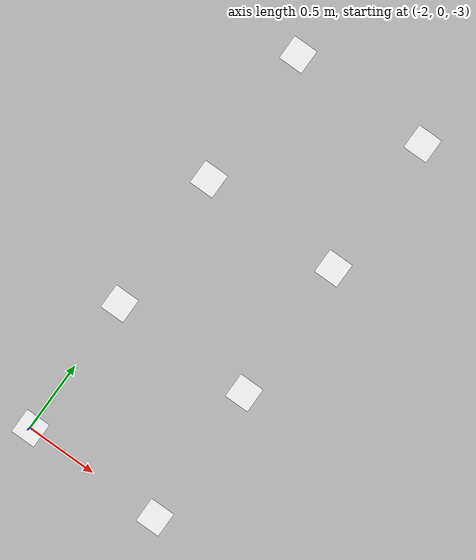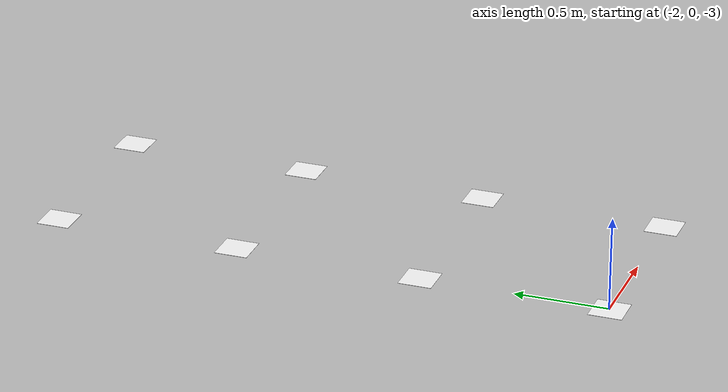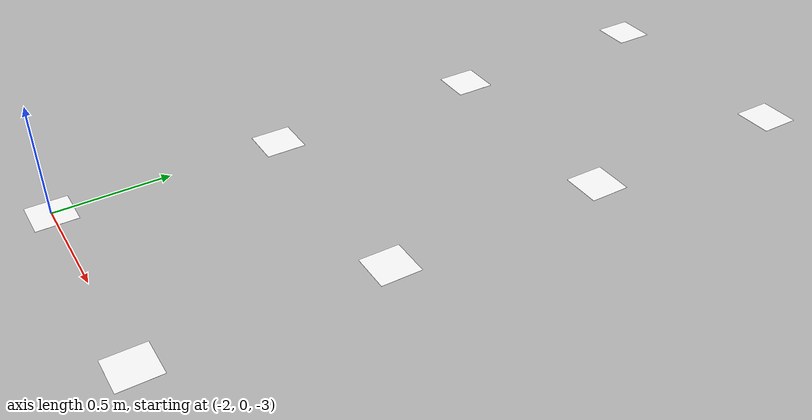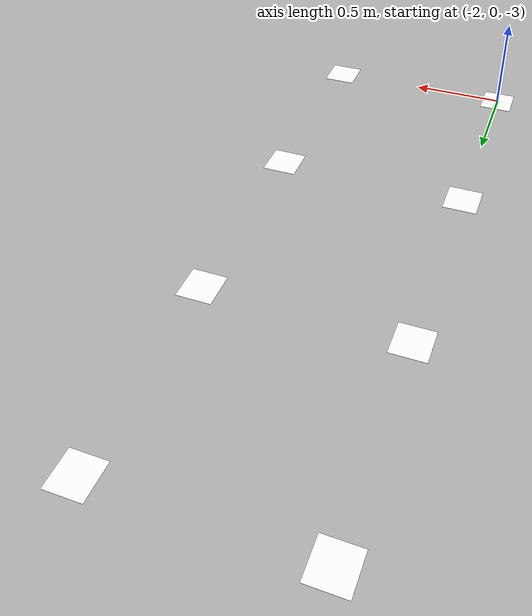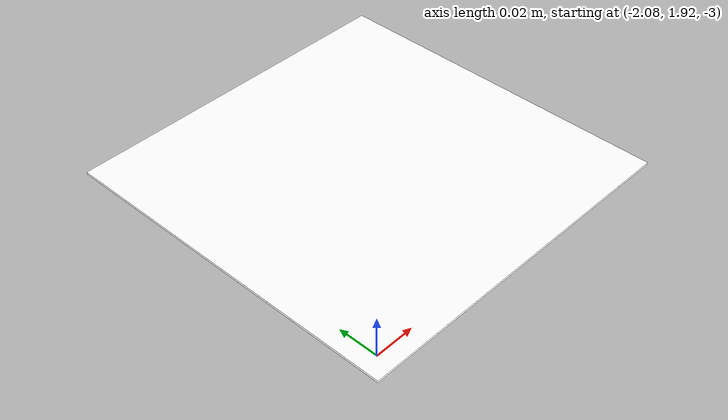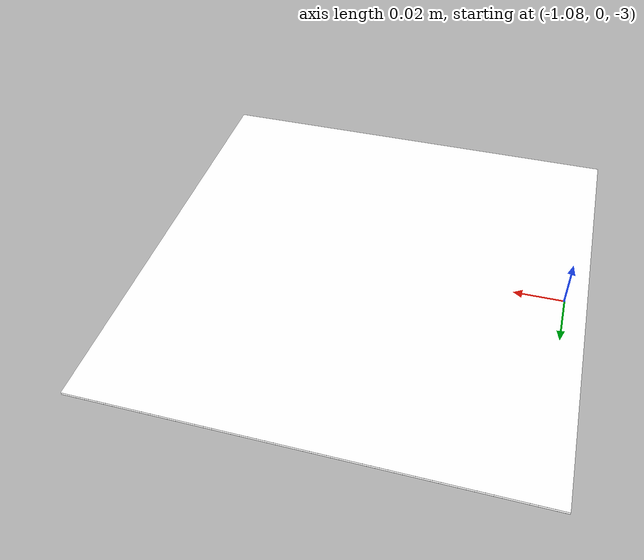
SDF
<sdf version="1.6">
 <world name="default">
  <include><uri>model://sun</uri></include>
  <model name="marker8">
   <include><static>true</static><uri>model://marker_8</uri></include>
   <pose>-1 0 -3 0 0 0</pose>
  </model>
  <model name="marker9">
   <include><static>true</static><uri>model://marker_9</uri></include>
   <pose>-1 1 -3 0 0 0</pose>
  </model>
  <model name="marker10">
   <include><static>true</static><uri>model://marker_10</uri></include>
   <pose>-1 2 -3 0 0 0</pose>
  </model>
  <model name="marker11">
   <include><static>true</static><uri>model://marker_11</uri></include>
   <pose>-1 3 -3 0 0 0</pose>
  </model>
  <model name="marker12">
   <include><static>true</static><uri>model://marker_12</uri></include>
   <pose>-2 3 -3 0 0 0</pose>
  </model>
  <model name="marker13">
   <include><static>true</static><uri>model://marker_13</uri></include>
   <pose>-2 2 -3 0 0 0</pose>
  </model>
  <model name="marker14">
   <include><static>true</static><uri>model://marker_14</uri></include>
   <pose>-2 1 -3 0 0 0</pose>
  </model>
  <model name="marker15">
   <include><static>true</static><uri>model://marker_15</uri></include>
   <pose>-2 0 -3 0 0 0</pose>
  </model>
 </world>
</sdf>

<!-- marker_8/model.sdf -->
<sdf version='1.5'>
  <model name='marker_8'>

    <link name='marker'>
      <pose frame=''>0 0 0 0 0 0</pose>
      <visual name='visual'>
        <geometry>
          <box>
            <size>0.1778 0.1778 1e-5</size>
          </box>
        </geometry>
        <material>
          <script>
            <uri>model://marker_8/materials/scripts</uri>
            <uri>model://marker_8/materials/textures</uri>
            <name>ArucoVisualMarker8/Marker</name>
          </script>
          <ambient>1 1 1 1</ambient>
          <diffuse>1 1 1 1</diffuse>
          <specular>0 0 0 1</specular>
          <emissive>1 1 1 0</emissive>
          <shader type='vertex'>
            <normal_map>__default__</normal_map>
          </shader>
        </material>
        <pose frame=''>0 0 0 0 0 0</pose>
        <cast_shadows>1</cast_shadows>
        <transparency>0</transparency>
      </visual>
      <collision name='collision'>
        <laser_retro>0</laser_retro>
        <max_contacts>10</max_contacts>
        <pose frame=''>0 0 0 0 0 0</pose>
        <geometry>
          <box>
            <size>0.1778 0.1778 1e-05</size>
          </box>
        </geometry>
      </collision>
    </link>

    <link name='marker_pad'>
      <pose frame='marker'>0 0 -1e-3 0 0 0</pose>
      <visual name='visual'>
        <geometry>
          <box>
            <size>0.1778 0.1778 1e-5</size>
          </box>
        </geometry>
        <material>
          <lighting>1</lighting>
          <script>
            <uri>file://media/materials/scripts/gazebo.material</uri>
            <name>Gazebo/White</name>
          </script>
          <ambient>0.3 0.3 0.3 1</ambient>
          <diffuse>0.7 0.7 0.7 1</diffuse>
          <specular>0.01 0.01 0.01 1</specular>
          <emissive>1 1 1 0</emissive>
          <shader type='vertex'>
            <normal_map>__default__</normal_map>
          </shader>
        </material>
        <cast_shadows>1</cast_shadows>
        <transparency>0</transparency>
      </visual>
      <collision name='collision'>
        <laser_retro>0</laser_retro>
        <max_contacts>10</max_contacts>
        <pose frame=''>0 0 0 0 0 0</pose>
        <geometry>
          <box>
            <size>0.1778 0.1778 1e-5</size>
          </box>
        </geometry>
      </collision>
    </link>

    <joint name='marker_JOINT_marker_pad' type='revolute'>
      <parent>marker</parent>
      <child>marker_pad</child>
      <pose frame=''>0 0 0 0 0 0</pose>
      <axis>
        <xyz>0 0 1</xyz>
        <limit>
          <upper>0</upper>
          <lower>0</lower>
        </limit>
      </axis>
    </joint>

    <static>1</static>
    <allow_auto_disable>1</allow_auto_disable>

  </model>
</sdf>

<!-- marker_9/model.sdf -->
<sdf version='1.5'>
  <model name='marker_9'>

    <link name='marker'>
      <pose frame=''>0 0 0 0 0 0</pose>
      <visual name='visual'>
        <geometry>
          <box>
            <size>0.1778 0.1778 1e-5</size>
          </box>
        </geometry>
        <material>
          <script>
            <uri>model://marker_9/materials/scripts</uri>
            <uri>model://marker_9/materials/textures</uri>
            <name>ArucoVisualMarker9/Marker</name>
          </script>
          <ambient>1 1 1 1</ambient>
          <diffuse>1 1 1 1</diffuse>
          <specular>0 0 0 1</specular>
          <emissive>1 1 1 0</emissive>
          <shader type='vertex'>
            <normal_map>__default__</normal_map>
          </shader>
        </material>
        <pose frame=''>0 0 0 0 0 0</pose>
        <cast_shadows>1</cast_shadows>
        <transparency>0</transparency>
      </visual>
      <collision name='collision'>
        <laser_retro>0</laser_retro>
        <max_contacts>10</max_contacts>
        <pose frame=''>0 0 0 0 0 0</pose>
        <geometry>
          <box>
            <size>0.1778 0.1778 1e-05</size>
          </box>
        </geometry>
      </collision>
    </link>

    <link name='marker_pad'>
      <pose frame='marker'>0 0 -1e-3 0 0 0</pose>
      <visual name='visual'>
        <geometry>
          <box>
            <size>0.1778 0.1778 1e-5</size>
          </box>
        </geometry>
        <material>
          <lighting>1</lighting>
          <script>
            <uri>file://media/materials/scripts/gazebo.material</uri>
            <name>Gazebo/White</name>
          </script>
          <ambient>0.3 0.3 0.3 1</ambient>
          <diffuse>0.7 0.7 0.7 1</diffuse>
          <specular>0.01 0.01 0.01 1</specular>
          <emissive>1 1 1 0</emissive>
          <shader type='vertex'>
            <normal_map>__default__</normal_map>
          </shader>
        </material>
        <cast_shadows>1</cast_shadows>
        <transparency>0</transparency>
      </visual>
      <collision name='collision'>
        <laser_retro>0</laser_retro>
        <max_contacts>10</max_contacts>
        <pose frame=''>0 0 0 0 0 0</pose>
        <geometry>
          <box>
            <size>0.1778 0.1778 1e-5</size>
          </box>
        </geometry>
      </collision>
    </link>

    <joint name='marker_JOINT_marker_pad' type='revolute'>
      <parent>marker</parent>
      <child>marker_pad</child>
      <pose frame=''>0 0 0 0 0 0</pose>
      <axis>
        <xyz>0 0 1</xyz>
        <limit>
          <upper>0</upper>
          <lower>0</lower>
        </limit>
      </axis>
    </joint>

    <static>1</static>
    <allow_auto_disable>1</allow_auto_disable>

  </model>
</sdf>

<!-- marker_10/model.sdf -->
<sdf version='1.5'>
  <model name='marker_10'>

    <link name='marker'>
      <pose frame=''>0 0 0 0 0 0</pose>
      <visual name='visual'>
        <geometry>
          <box>
            <size>0.1778 0.1778 1e-5</size>
          </box>
        </geometry>
        <material>
          <script>
            <uri>model://marker_10/materials/scripts</uri>
            <uri>model://marker_10/materials/textures</uri>
            <name>ArucoVisualMarker10/Marker</name>
          </script>
          <ambient>1 1 1 1</ambient>
          <diffuse>1 1 1 1</diffuse>
          <specular>0 0 0 1</specular>
          <emissive>1 1 1 0</emissive>
          <shader type='vertex'>
            <normal_map>__default__</normal_map>
          </shader>
        </material>
        <pose frame=''>0 0 0 0 0 0</pose>
        <cast_shadows>1</cast_shadows>
        <transparency>0</transparency>
      </visual>
      <collision name='collision'>
        <laser_retro>0</laser_retro>
        <max_contacts>10</max_contacts>
        <pose frame=''>0 0 0 0 0 0</pose>
        <geometry>
          <box>
            <size>0.1778 0.1778 1e-05</size>
          </box>
        </geometry>
      </collision>
    </link>

    <link name='marker_pad'>
      <pose frame='marker'>0 0 -1e-3 0 0 0</pose>
      <visual name='visual'>
        <geometry>
          <box>
            <size>0.1778 0.1778 1e-5</size>
          </box>
        </geometry>
        <material>
          <lighting>1</lighting>
          <script>
            <uri>file://media/materials/scripts/gazebo.material</uri>
            <name>Gazebo/White</name>
          </script>
          <ambient>0.3 0.3 0.3 1</ambient>
          <diffuse>0.7 0.7 0.7 1</diffuse>
          <specular>0.01 0.01 0.01 1</specular>
          <emissive>1 1 1 0</emissive>
          <shader type='vertex'>
            <normal_map>__default__</normal_map>
          </shader>
        </material>
        <cast_shadows>1</cast_shadows>
        <transparency>0</transparency>
      </visual>
      <collision name='collision'>
        <laser_retro>0</laser_retro>
        <max_contacts>10</max_contacts>
        <pose frame=''>0 0 0 0 0 0</pose>
        <geometry>
          <box>
            <size>0.1778 0.1778 1e-5</size>
          </box>
        </geometry>
      </collision>
    </link>

    <joint name='marker_JOINT_marker_pad' type='revolute'>
      <parent>marker</parent>
      <child>marker_pad</child>
      <pose frame=''>0 0 0 0 0 0</pose>
      <axis>
        <xyz>0 0 1</xyz>
        <limit>
          <upper>0</upper>
          <lower>0</lower>
        </limit>
      </axis>
    </joint>

    <static>1</static>
    <allow_auto_disable>1</allow_auto_disable>

  </model>
</sdf>

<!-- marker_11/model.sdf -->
<sdf version='1.5'>
  <model name='marker_11'>

    <link name='marker'>
      <pose frame=''>0 0 0 0 0 0</pose>
      <visual name='visual'>
        <geometry>
          <box>
            <size>0.1778 0.1778 1e-5</size>
          </box>
        </geometry>
        <material>
          <script>
            <uri>model://marker_11/materials/scripts</uri>
            <uri>model://marker_11/materials/textures</uri>
            <name>ArucoVisualMarker11/Marker</name>
          </script>
          <ambient>1 1 1 1</ambient>
          <diffuse>1 1 1 1</diffuse>
          <specular>0 0 0 1</specular>
          <emissive>1 1 1 0</emissive>
          <shader type='vertex'>
            <normal_map>__default__</normal_map>
          </shader>
        </material>
        <pose frame=''>0 0 0 0 0 0</pose>
        <cast_shadows>1</cast_shadows>
        <transparency>0</transparency>
      </visual>
      <collision name='collision'>
        <laser_retro>0</laser_retro>
        <max_contacts>10</max_contacts>
        <pose frame=''>0 0 0 0 0 0</pose>
        <geometry>
          <box>
            <size>0.1778 0.1778 1e-05</size>
          </box>
        </geometry>
      </collision>
    </link>

    <link name='marker_pad'>
      <pose frame='marker'>0 0 -1e-3 0 0 0</pose>
      <visual name='visual'>
        <geometry>
          <box>
            <size>0.1778 0.1778 1e-5</size>
          </box>
        </geometry>
        <material>
          <lighting>1</lighting>
          <script>
            <uri>file://media/materials/scripts/gazebo.material</uri>
            <name>Gazebo/White</name>
          </script>
          <ambient>0.3 0.3 0.3 1</ambient>
          <diffuse>0.7 0.7 0.7 1</diffuse>
          <specular>0.01 0.01 0.01 1</specular>
          <emissive>1 1 1 0</emissive>
          <shader type='vertex'>
            <normal_map>__default__</normal_map>
          </shader>
        </material>
        <cast_shadows>1</cast_shadows>
        <transparency>0</transparency>
      </visual>
      <collision name='collision'>
        <laser_retro>0</laser_retro>
        <max_contacts>10</max_contacts>
        <pose frame=''>0 0 0 0 0 0</pose>
        <geometry>
          <box>
            <size>0.1778 0.1778 1e-5</size>
          </box>
        </geometry>
      </collision>
    </link>

    <joint name='marker_JOINT_marker_pad' type='revolute'>
      <parent>marker</parent>
      <child>marker_pad</child>
      <pose frame=''>0 0 0 0 0 0</pose>
      <axis>
        <xyz>0 0 1</xyz>
        <limit>
          <upper>0</upper>
          <lower>0</lower>
        </limit>
      </axis>
    </joint>

    <static>1</static>
    <allow_auto_disable>1</allow_auto_disable>

  </model>
</sdf>

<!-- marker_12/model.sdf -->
<sdf version='1.5'>
  <model name='marker_12'>

    <link name='marker'>
      <pose frame=''>0 0 0 0 0 0</pose>
      <visual name='visual'>
        <geometry>
          <box>
            <size>0.1778 0.1778 1e-5</size>
          </box>
        </geometry>
        <material>
          <script>
            <uri>model://marker_12/materials/scripts</uri>
            <uri>model://marker_12/materials/textures</uri>
            <name>ArucoVisualMarker12/Marker</name>
          </script>
          <ambient>1 1 1 1</ambient>
          <diffuse>1 1 1 1</diffuse>
          <specular>0 0 0 1</specular>
          <emissive>1 1 1 0</emissive>
          <shader type='vertex'>
            <normal_map>__default__</normal_map>
          </shader>
        </material>
        <pose frame=''>0 0 0 0 0 0</pose>
        <cast_shadows>1</cast_shadows>
        <transparency>0</transparency>
      </visual>
      <collision name='collision'>
        <laser_retro>0</laser_retro>
        <max_contacts>10</max_contacts>
        <pose frame=''>0 0 0 0 0 0</pose>
        <geometry>
          <box>
            <size>0.1778 0.1778 1e-05</size>
          </box>
        </geometry>
      </collision>
    </link>

    <link name='marker_pad'>
      <pose frame='marker'>0 0 -1e-3 0 0 0</pose>
      <visual name='visual'>
        <geometry>
          <box>
            <size>0.1778 0.1778 1e-5</size>
          </box>
        </geometry>
        <material>
          <lighting>1</lighting>
          <script>
            <uri>file://media/materials/scripts/gazebo.material</uri>
            <name>Gazebo/White</name>
          </script>
          <ambient>0.3 0.3 0.3 1</ambient>
          <diffuse>0.7 0.7 0.7 1</diffuse>
          <specular>0.01 0.01 0.01 1</specular>
          <emissive>1 1 1 0</emissive>
          <shader type='vertex'>
            <normal_map>__default__</normal_map>
          </shader>
        </material>
        <cast_shadows>1</cast_shadows>
        <transparency>0</transparency>
      </visual>
      <collision name='collision'>
        <laser_retro>0</laser_retro>
        <max_contacts>10</max_contacts>
        <pose frame=''>0 0 0 0 0 0</pose>
        <geometry>
          <box>
            <size>0.1778 0.1778 1e-5</size>
          </box>
        </geometry>
      </collision>
    </link>

    <joint name='marker_JOINT_marker_pad' type='revolute'>
      <parent>marker</parent>
      <child>marker_pad</child>
      <pose frame=''>0 0 0 0 0 0</pose>
      <axis>
        <xyz>0 0 1</xyz>
        <limit>
          <upper>0</upper>
          <lower>0</lower>
        </limit>
      </axis>
    </joint>

    <static>1</static>
    <allow_auto_disable>1</allow_auto_disable>

  </model>
</sdf>

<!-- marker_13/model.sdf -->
<sdf version='1.5'>
  <model name='marker_13'>

    <link name='marker'>
      <pose frame=''>0 0 0 0 0 0</pose>
      <visual name='visual'>
        <geometry>
          <box>
            <size>0.1778 0.1778 1e-5</size>
          </box>
        </geometry>
        <material>
          <script>
            <uri>model://marker_13/materials/scripts</uri>
            <uri>model://marker_13/materials/textures</uri>
            <name>ArucoVisualMarker13/Marker</name>
          </script>
          <ambient>1 1 1 1</ambient>
          <diffuse>1 1 1 1</diffuse>
          <specular>0 0 0 1</specular>
          <emissive>1 1 1 0</emissive>
          <shader type='vertex'>
            <normal_map>__default__</normal_map>
          </shader>
        </material>
        <pose frame=''>0 0 0 0 0 0</pose>
        <cast_shadows>1</cast_shadows>
        <transparency>0</transparency>
      </visual>
      <collision name='collision'>
        <laser_retro>0</laser_retro>
        <max_contacts>10</max_contacts>
        <pose frame=''>0 0 0 0 0 0</pose>
        <geometry>
          <box>
            <size>0.1778 0.1778 1e-05</size>
          </box>
        </geometry>
      </collision>
    </link>

    <link name='marker_pad'>
      <pose frame='marker'>0 0 -1e-3 0 0 0</pose>
      <visual name='visual'>
        <geometry>
          <box>
            <size>0.1778 0.1778 1e-5</size>
          </box>
        </geometry>
        <material>
          <lighting>1</lighting>
          <script>
            <uri>file://media/materials/scripts/gazebo.material</uri>
            <name>Gazebo/White</name>
          </script>
          <ambient>0.3 0.3 0.3 1</ambient>
          <diffuse>0.7 0.7 0.7 1</diffuse>
          <specular>0.01 0.01 0.01 1</specular>
          <emissive>1 1 1 0</emissive>
          <shader type='vertex'>
            <normal_map>__default__</normal_map>
          </shader>
        </material>
        <cast_shadows>1</cast_shadows>
        <transparency>0</transparency>
      </visual>
      <collision name='collision'>
        <laser_retro>0</laser_retro>
        <max_contacts>10</max_contacts>
        <pose frame=''>0 0 0 0 0 0</pose>
        <geometry>
          <box>
            <size>0.1778 0.1778 1e-5</size>
          </box>
        </geometry>
      </collision>
    </link>

    <joint name='marker_JOINT_marker_pad' type='revolute'>
      <parent>marker</parent>
      <child>marker_pad</child>
      <pose frame=''>0 0 0 0 0 0</pose>
      <axis>
        <xyz>0 0 1</xyz>
        <limit>
          <upper>0</upper>
          <lower>0</lower>
        </limit>
      </axis>
    </joint>

    <static>1</static>
    <allow_auto_disable>1</allow_auto_disable>

  </model>
</sdf>

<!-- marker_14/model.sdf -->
<sdf version='1.5'>
  <model name='marker_14'>

    <link name='marker'>
      <pose frame=''>0 0 0 0 0 0</pose>
      <visual name='visual'>
        <geometry>
          <box>
            <size>0.1778 0.1778 1e-5</size>
          </box>
        </geometry>
        <material>
          <script>
            <uri>model://marker_14/materials/scripts</uri>
            <uri>model://marker_14/materials/textures</uri>
            <name>ArucoVisualMarker14/Marker</name>
          </script>
          <ambient>1 1 1 1</ambient>
          <diffuse>1 1 1 1</diffuse>
          <specular>0 0 0 1</specular>
          <emissive>1 1 1 0</emissive>
          <shader type='vertex'>
            <normal_map>__default__</normal_map>
          </shader>
        </material>
        <pose frame=''>0 0 0 0 0 0</pose>
        <cast_shadows>1</cast_shadows>
        <transparency>0</transparency>
      </visual>
      <collision name='collision'>
        <laser_retro>0</laser_retro>
        <max_contacts>10</max_contacts>
        <pose frame=''>0 0 0 0 0 0</pose>
        <geometry>
          <box>
            <size>0.1778 0.1778 1e-05</size>
          </box>
        </geometry>
      </collision>
    </link>

    <link name='marker_pad'>
      <pose frame='marker'>0 0 -1e-3 0 0 0</pose>
      <visual name='visual'>
        <geometry>
          <box>
            <size>0.1778 0.1778 1e-5</size>
          </box>
        </geometry>
        <material>
          <lighting>1</lighting>
          <script>
            <uri>file://media/materials/scripts/gazebo.material</uri>
            <name>Gazebo/White</name>
          </script>
          <ambient>0.3 0.3 0.3 1</ambient>
          <diffuse>0.7 0.7 0.7 1</diffuse>
          <specular>0.01 0.01 0.01 1</specular>
          <emissive>1 1 1 0</emissive>
          <shader type='vertex'>
            <normal_map>__default__</normal_map>
          </shader>
        </material>
        <cast_shadows>1</cast_shadows>
        <transparency>0</transparency>
      </visual>
      <collision name='collision'>
        <laser_retro>0</laser_retro>
        <max_contacts>10</max_contacts>
        <pose frame=''>0 0 0 0 0 0</pose>
        <geometry>
          <box>
            <size>0.1778 0.1778 1e-5</size>
          </box>
        </geometry>
      </collision>
    </link>

    <joint name='marker_JOINT_marker_pad' type='revolute'>
      <parent>marker</parent>
      <child>marker_pad</child>
      <pose frame=''>0 0 0 0 0 0</pose>
      <axis>
        <xyz>0 0 1</xyz>
        <limit>
          <upper>0</upper>
          <lower>0</lower>
        </limit>
      </axis>
    </joint>

    <static>1</static>
    <allow_auto_disable>1</allow_auto_disable>

  </model>
</sdf>

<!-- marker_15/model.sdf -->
<sdf version='1.5'>
  <model name='marker_15'>

    <link name='marker'>
      <pose frame=''>0 0 0 0 0 0</pose>
      <visual name='visual'>
        <geometry>
          <box>
            <size>0.1778 0.1778 1e-5</size>
          </box>
        </geometry>
        <material>
          <script>
            <uri>model://marker_15/materials/scripts</uri>
            <uri>model://marker_15/materials/textures</uri>
            <name>ArucoVisualMarker15/Marker</name>
          </script>
          <ambient>1 1 1 1</ambient>
          <diffuse>1 1 1 1</diffuse>
          <specular>0 0 0 1</specular>
          <emissive>1 1 1 0</emissive>
          <shader type='vertex'>
            <normal_map>__default__</normal_map>
          </shader>
        </material>
        <pose frame=''>0 0 0 0 0 0</pose>
        <cast_shadows>1</cast_shadows>
        <transparency>0</transparency>
      </visual>
      <collision name='collision'>
        <laser_retro>0</laser_retro>
        <max_contacts>10</max_contacts>
        <pose frame=''>0 0 0 0 0 0</pose>
        <geometry>
          <box>
            <size>0.1778 0.1778 1e-05</size>
          </box>
        </geometry>
      </collision>
    </link>

    <link name='marker_pad'>
      <pose frame='marker'>0 0 -1e-3 0 0 0</pose>
      <visual name='visual'>
        <geometry>
          <box>
            <size>0.1778 0.1778 1e-5</size>
          </box>
        </geometry>
        <material>
          <lighting>1</lighting>
          <script>
            <uri>file://media/materials/scripts/gazebo.material</uri>
            <name>Gazebo/White</name>
          </script>
          <ambient>0.3 0.3 0.3 1</ambient>
          <diffuse>0.7 0.7 0.7 1</diffuse>
          <specular>0.01 0.01 0.01 1</specular>
          <emissive>1 1 1 0</emissive>
          <shader type='vertex'>
            <normal_map>__default__</normal_map>
          </shader>
        </material>
        <cast_shadows>1</cast_shadows>
        <transparency>0</transparency>
      </visual>
      <collision name='collision'>
        <laser_retro>0</laser_retro>
        <max_contacts>10</max_contacts>
        <pose frame=''>0 0 0 0 0 0</pose>
        <geometry>
          <box>
            <size>0.1778 0.1778 1e-5</size>
          </box>
        </geometry>
      </collision>
    </link>

    <joint name='marker_JOINT_marker_pad' type='revolute'>
      <parent>marker</parent>
      <child>marker_pad</child>
      <pose frame=''>0 0 0 0 0 0</pose>
      <axis>
        <xyz>0 0 1</xyz>
        <limit>
          <upper>0</upper>
          <lower>0</lower>
        </limit>
      </axis>
    </joint>

    <static>1</static>
    <allow_auto_disable>1</allow_auto_disable>

  </model>
</sdf>
